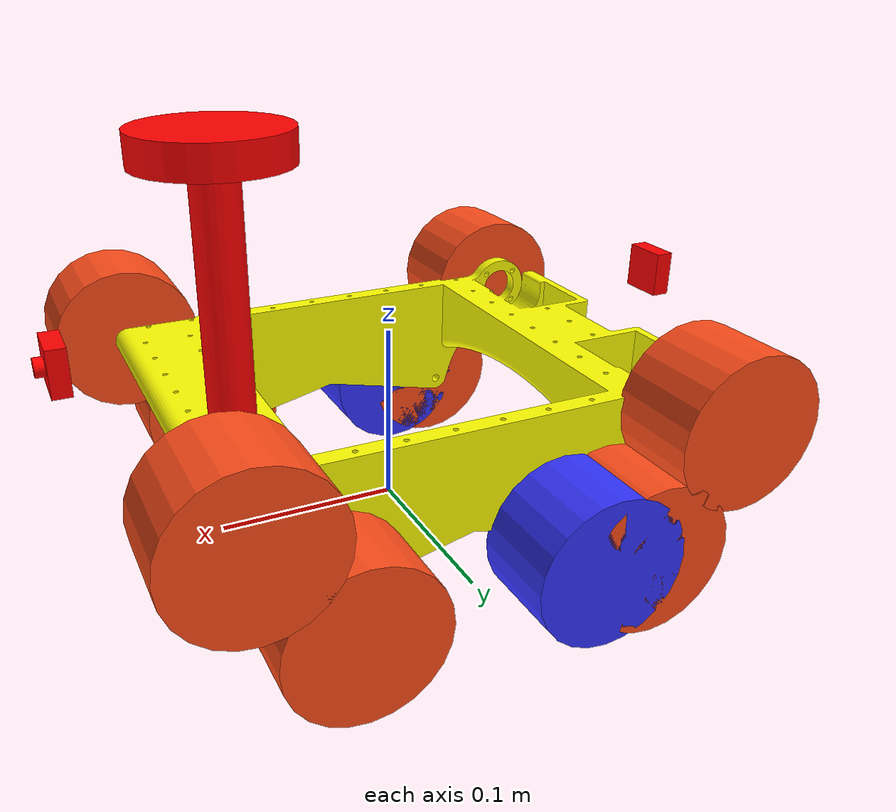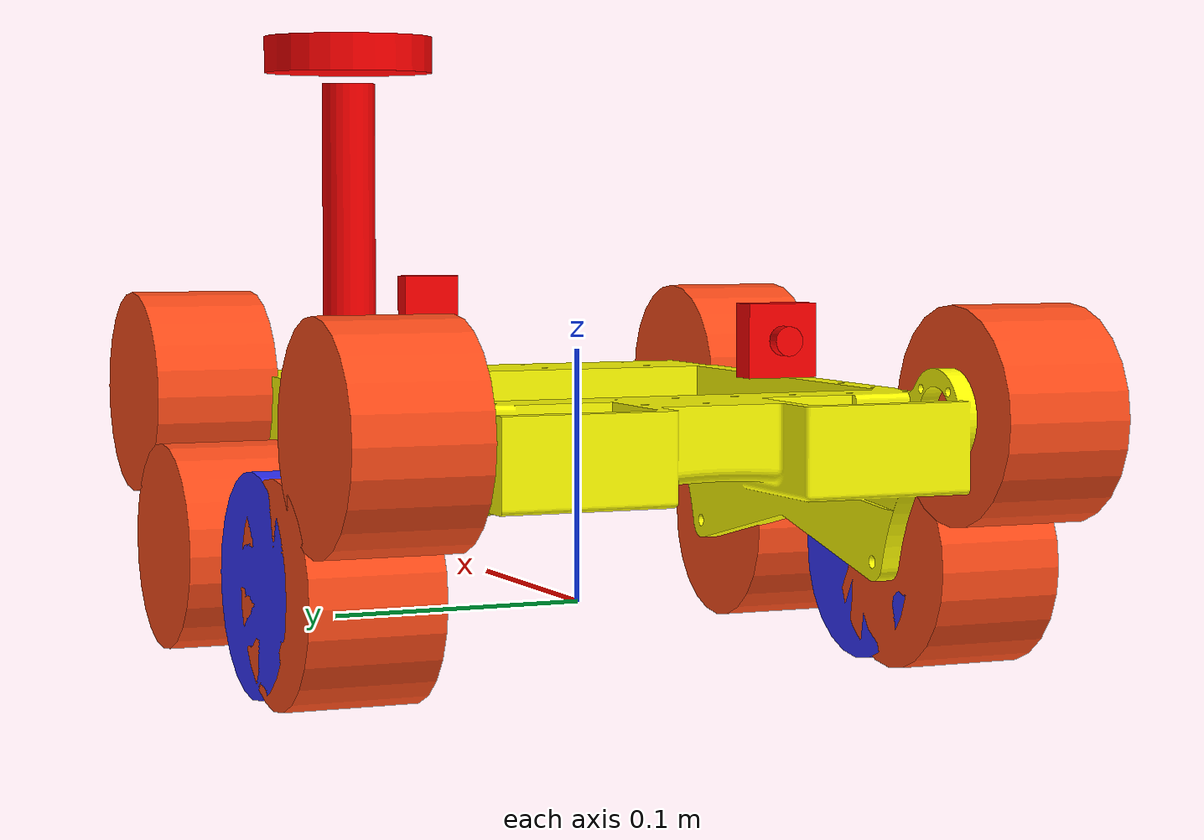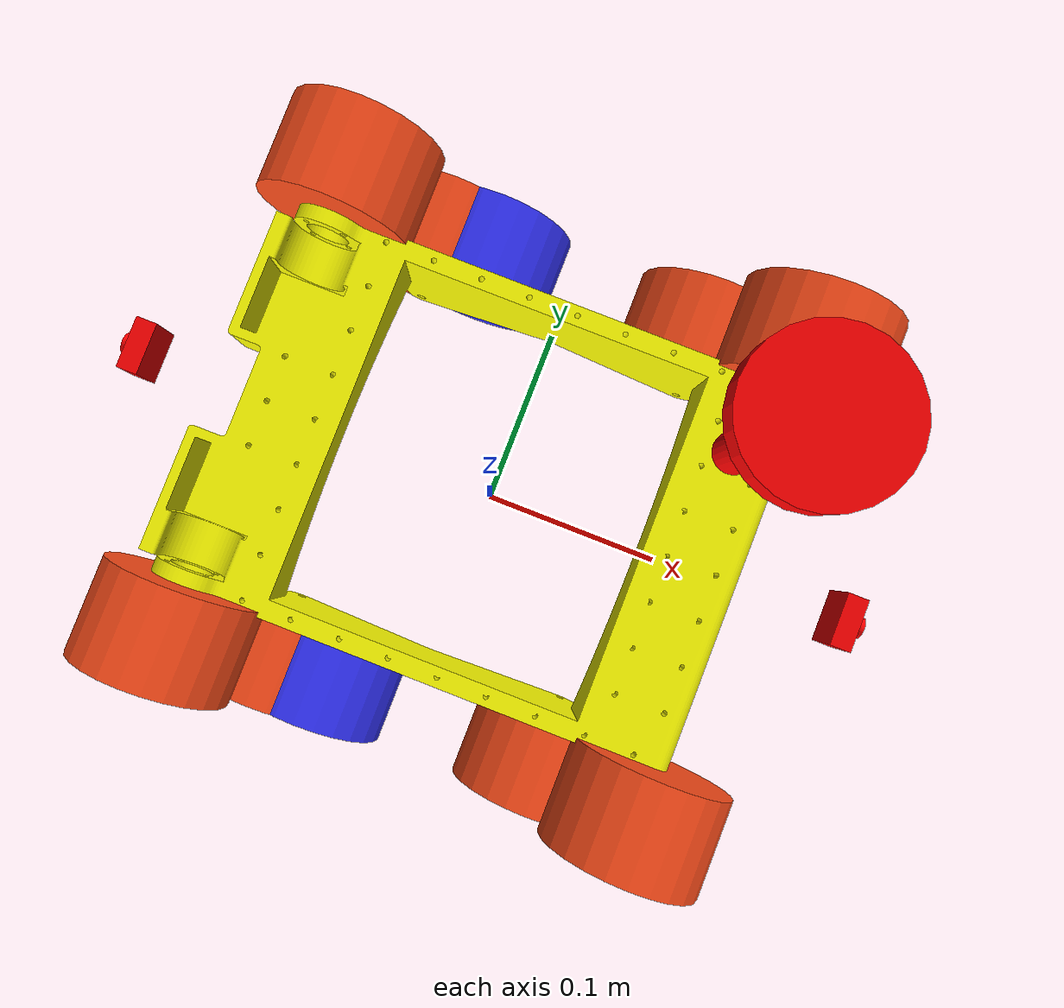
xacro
<?xml version="1.0"?>
<robot xmlns:xacro="http://www.ros.org/wiki/xacro" name="robot">

    <xacro:arg name="sim_mode" default="false" />

    <xacro:include filename="robot_core.xacro" />

    <xacro:include filename="lidar.xacro" />

    <xacro:include filename="cameras.xacro" />

    <xacro:if value="$(arg sim_mode)">
        <xacro:include filename="gz_plugins.xacro" />
    </xacro:if>

    <xacro:include filename="ros2_control.xacro" />

</robot>

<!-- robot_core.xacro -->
<robot xmlns:xacro="http://www.ros.org/wiki/xacro">
    <xacro:include filename="inertial_macros.xacro" />

    <material name="white">
        <color rgba="1 1 1 1"/>
    </material>

    <material name="orange">
        <color rgba="1 0.3 0.1 1"/>
    </material>

    <material name="blue">
        <color rgba="0.2 0.2 1 1"/>
    </material>

    <material name="black">
        <color rgba="0 0 0 1"/>
    </material>

    <material name="red">
        <color rgba="1 0 0 1"/>
    </material>

    <material name="yellow">
        <color rgba="1 1 0 1"/>
    </material>

    <xacro:macro name="robot_wheel">
        <visual>
            <geometry>
                <cylinder radius="0.0411" length="0.05" />
            </geometry>
            <material name="orange" />
        </visual>
        <collision>
            <geometry>
                <cylinder radius="0.0411" length="0.05" />
            </geometry>
        </collision>
    </xacro:macro>

    <link name="base_link">

    </link>

    <joint name="base_footprint_joint" type="fixed">
        <parent link="base_link" />
        <child link="base_footprint" />
        <origin xyz="0 0 0" rpy="0 0 0" />
    </joint>

    <link name="base_footprint">
    </link>

    <!-- CHASSIS LINK -->
    <!-- Note 0.0206 is to offset the wheels onto the ground -->

    <joint name="chassis_joint" type="fixed">
        <parent link="base_link" />
        <child link="chassis" />
        <origin xyz="0 0 ${0.066345 + 0.0206}" />
    </joint>

    <link name="chassis">
        <visual>
            <origin xyz="0.0475 -0.090 0" rpy="0 0 -${pi/2}" />
            <geometry>
                <mesh filename="file://$(find robot_tank_desc)/stl/robot_frame.stl" scale="0.001 0.001 0.001" />
            </geometry>
            <material name="yellow" />
        </visual>
        <collision>
            <origin xyz="0 0 -0.037" />
            <geometry>
                <box size="0.261 0.195 0.074" />
            </geometry>
        </collision>
        <xacro:inertial_box mass="0.5" x="0.356" y="0.195" z="0.074">
            <origin xyz="0 0 0.0" rpy="0 0 0" />
        </xacro:inertial_box>
    </link>

    <!-- LEFT WHEEL LINK -->

    <!-- Wheels have r=30.6mm and track is 10.6mm wide, so total radius of 41.2mm -->
    <!-- The track is 50mm wide -->
    <joint name="left_wheel_joint" type="continuous">
        <parent link="base_link" />
        <child link="left_wheel" />
        <!-- Note the wheel is offset on X to account for the center of gravity/turn radius being towards the back of the robot -->
        <origin xyz="-0.05 0.1225 0.0206" rpy="-${pi/2} 0 0" />
        <axis xyz="0 0 1" />
    </joint>

    <link name="left_wheel">
        <visual>
            <geometry>
                <cylinder radius="0.0412" length="0.05" />
            </geometry>
            <material name="blue" />
        </visual>
        <collision>
            <geometry>
                <cylinder radius="0.0412" length="0.05" />
            </geometry>
        </collision>
        <xacro:inertial_cylinder mass="0.1" length="0.05" radius="0.0412">
            <origin xyz="0 0 0" rpy="0 0 0" />
        </xacro:inertial_cylinder>
    </link>

    <!-- RIGHT WHEEL LINK -->
    <joint name="right_wheel_joint" type="continuous">
        <parent link="base_link" />
        <child link="right_wheel" />
        <!-- Note the wheel is offset on X to account for the center of gravity/turn radius being towards the back of the robot -->
        <origin xyz="-0.05 -0.1225 0.0206" rpy="${pi/2} 0 0" />
        <axis xyz="0 0 -1" />
    </joint>

    <link name="right_wheel">
        <visual>
            <geometry>
                <cylinder radius="0.0412" length="0.05" />
            </geometry>
            <material name="blue" />
        </visual>
        <collision>
            <geometry>
                <cylinder radius="0.0412" length="0.05" />
            </geometry>
        </collision>
        <xacro:inertial_cylinder mass="0.1" length="0.05" radius="0.0412">
            <origin xyz="0 0 0" rpy="0 0 0" />
        </xacro:inertial_cylinder>
    </link>

    <!-- DUMMY WHEELS AT FRONT AND BACK -->

    <joint name="front_left_bottom_wheel_joint" type="fixed">
        <parent link="base_link" />
        <child link="front_left_bottom_wheel" />
        <origin xyz="0.0763 -0.1225 0.0206" rpy="-${pi/2} 0 0" />
        <axis xyz="0 0 1" />
    </joint>

    <link name="front_left_bottom_wheel">
        <xacro:robot_wheel />
    </link>

    <joint name="front_left_top_wheel_joint" type="fixed">
        <parent link="base_link" />
        <child link="front_left_top_wheel" />
        <origin xyz="0.1230 -0.1225 ${0.058845 + 0.0206}" rpy="-${pi/2} 0 0" />
        <axis xyz="0 0 1" />
    </joint>

    <link name="front_left_top_wheel">
        <xacro:robot_wheel />
    </link>

    <joint name="front_right_bottom_wheel_joint" type="fixed">
        <parent link="base_link" />
        <child link="front_right_bottom_wheel" />
        <origin xyz="0.0763 0.1225 0.0206" rpy="-${pi/2} 0 0" />
        <axis xyz="0 0 -1" />
    </joint>

    <link name="front_right_bottom_wheel">
        <xacro:robot_wheel />
    </link>

    <joint name="front_right_top_wheel_joint" type="fixed">
        <parent link="base_link" />
        <child link="front_right_top_wheel" />
        <origin xyz="0.1230 0.1225 ${0.058845 + 0.0206}" rpy="-${pi/2} 0 0" />
        <axis xyz="0 0 1" />
    </joint>

    <link name="front_right_top_wheel">
        <xacro:robot_wheel />
    </link>

    <joint name="back_left_bottom_wheel_joint" type="fixed">
        <parent link="base_link" />
        <child link="back_left_bottom_wheel" />
        <origin xyz="-0.0763 -0.1225 0.0206" rpy="-${pi/2} 0 0" />
        <axis xyz="0 0 1" />
    </joint>

    <link name="back_left_bottom_wheel">
        <xacro:robot_wheel />
    </link>

    <joint name="back_left_top_wheel_joint" type="fixed">
        <parent link="base_link" />
        <child link="back_left_top_wheel" />
        <origin xyz="-0.1230 -0.1225 ${0.058845 + 0.0206}" rpy="-${pi/2} 0 0" />
        <axis xyz="0 0 1" />
    </joint>

    <link name="back_left_top_wheel">
        <xacro:robot_wheel />
    </link>

    <joint name="back_right_bottom_wheel_joint" type="fixed">
        <parent link="base_link" />
        <child link="back_right_bottom_wheel" />
        <origin xyz="-0.0763 0.1225 0.0206" rpy="-${pi/2} 0 0" />
        <axis xyz="0 0 -1" />
    </joint>

    <link name="back_right_bottom_wheel">
        <xacro:robot_wheel />
    </link>

    <joint name="back_right_top_wheel_joint" type="fixed">
        <parent link="base_link" />
        <child link="back_right_top_wheel" />
        <origin xyz="-0.1230 0.1225 ${0.058845 + 0.0206}" rpy="-${pi/2} 0 0" />
        <axis xyz="0 0 1" />
    </joint>

    <link name="back_right_top_wheel">
        <xacro:robot_wheel />
    </link>
</robot>

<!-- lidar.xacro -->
<robot xmlns:xacro="http://www.ros.org/wiki/xacro">

    <joint name="laser_joint" type="fixed">
        <parent link="chassis" />
        <child link="laser_frame" />
         <origin xyz="0.10525 ${0.02375 * 2.5} 0.132" rpy="0 0 ${pi/2}" />
    </joint>

    <link name="laser_frame">
        <visual>
            <geometry>
                <cylinder radius="0.035" length="0.015" />
            </geometry>
            <material name="red" />
        </visual>
        <collision>
            <geometry>
                <cylinder radius="0.035" length="0.015" />
            </geometry>
        </collision>
        <xacro:inertial_cylinder mass="0.01" length="0.015" radius="0.035">
            <origin xyz="0 0 0" rpy="0 0 0" />
        </xacro:inertial_cylinder>
    </link>

    <joint name="laser_rod_joint" type="fixed">
        <parent link="chassis" />
        <child link="laser_rod" />
        <origin xyz="0.10525 ${0.02375 * 2.5} 0.05" rpy="0 0 0" />
    </joint>

    <link name="laser_rod">
        <visual>
            <geometry>
                <cylinder radius="0.011" length="0.14" />
            </geometry>
            <material name="red" />
        </visual>
    </link>

    <gazebo reference="laser_frame">
        <sensor name="laser" type="gpu_lidar">
            <always_on>true</always_on>
            <visualize>true</visualize>
            <pose>0 0 0 0 0 0</pose>
            <update_rate>10</update_rate>
            <topic>scan</topic>
            <gz_frame_id>laser_frame</gz_frame_id>
            <lidar>
                <scan>
                    <horizontal>
                        <samples>360</samples>
                        <min_angle>0.0</min_angle>
                        <max_angle>6.28</max_angle>
                    </horizontal>
                </scan>
                <range>
                    <min>0.1</min>
                    <max>12</max>
                </range>
            </lidar>
        </sensor>

    </gazebo>
</robot>

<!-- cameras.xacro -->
<robot xmlns:xacro="http://www.ros.org/wiki/xacro">

    <!-- FRONT CAMERA -->
    <joint name="camera_front_joint" type="fixed">
        <parent link="chassis" />
        <child link="camera_front_link" />
        <origin xyz="0.178 0 0.025" rpy="0 0 0" />
    </joint>

    <link name="camera_front_link">
        <visual>
            <origin xyz="-0.005 0 0"/>
            <geometry>
                <box size="0.010 0.025 0.025"/>
            </geometry>
            <material name="red"/>
        </visual>
        <visual>
            <origin xyz="0.0025 0 0" rpy="0 -${pi/2} 0"/>
            <geometry>
                <cylinder radius="0.005" length="0.005"/>
            </geometry>
            <material name="red"/>
        </visual>
    </link>

    <joint name="camera_front_optical_joint" type="fixed">
        <parent link="camera_front_link"/>
        <child link="camera_front_link_optical"/>
        <origin xyz="0 0 0" rpy="${-pi/2} 0 ${-pi/2}"/>
    </joint>

    <link name="camera_front_link_optical"></link>

    <gazebo reference="camera_front_link">
        <material>Gazebo/Red</material>

        <sensor name="camera_front" type="camera">
            <pose> 0 0 0 0 0 0 </pose>
            <visualize>true</visualize>
            <update_rate>10</update_rate>
            <camera>
                <camera_info_topic>cam_1/camera_info</camera_info_topic>
                <horizontal_fov>1.089</horizontal_fov>
                <image>
                    <format>R8G8B8</format>
                    <width>640</width>
                    <height>480</height>
                </image>
                <clip>
                    <near>0.05</near>
                    <far>8.0</far>
                </clip>
            </camera>
            <topic>cam_1/image_raw</topic>
            <gz_frame_id>camera_front_link_optical</gz_frame_id>
        </sensor>
    </gazebo>

    <!-- BACK CAMERA -->
    <joint name="camera_back_joint" type="fixed">
        <parent link="chassis" />
        <child link="camera_back_link" />
        <origin xyz="-0.178 0 0.025" rpy="0 0 ${-pi}" />
    </joint>

    <link name="camera_back_link">
        <visual>
            <origin xyz="-0.005 0 0"/>
            <geometry>
                <box size="0.010 0.025 0.025"/>
            </geometry>
            <material name="red"/>
        </visual>
        <visual>
            <origin xyz="0.0025 0 0" rpy="0 -${pi/2} 0"/>
            <geometry>
                <cylinder radius="0.005" length="0.005"/>
            </geometry>
            <material name="red"/>
        </visual>
    </link>

    <joint name="camera_back_optical_joint" type="fixed">
        <parent link="camera_back_link"/>
        <child link="camera_back_link_optical"/>
        <origin xyz="0 0 0" rpy="${-pi/2} 0 ${-pi/2}"/>
    </joint>

    <link name="camera_back_link_optical"></link>

    <gazebo reference="camera_back_link">
        <material>Gazebo/Red</material>

        <sensor name="camera_back" type="camera">
            <pose> 0 0 0 0 0 0 </pose>
            <visualize>true</visualize>
            <update_rate>10</update_rate>
            <camera>
                <camera_info_topic>cam_2/camera_info</camera_info_topic>
                <horizontal_fov>1.089</horizontal_fov>
                <image>
                    <format>R8G8B8</format>
                    <width>640</width>
                    <height>480</height>
                </image>
                <clip>
                    <near>0.05</near>
                    <far>8.0</far>
                </clip>
            </camera>
            <topic>cam_2/image_raw</topic>
            <gz_frame_id>camera_back_link_optical</gz_frame_id>
        </sensor>
    </gazebo>
</robot>
